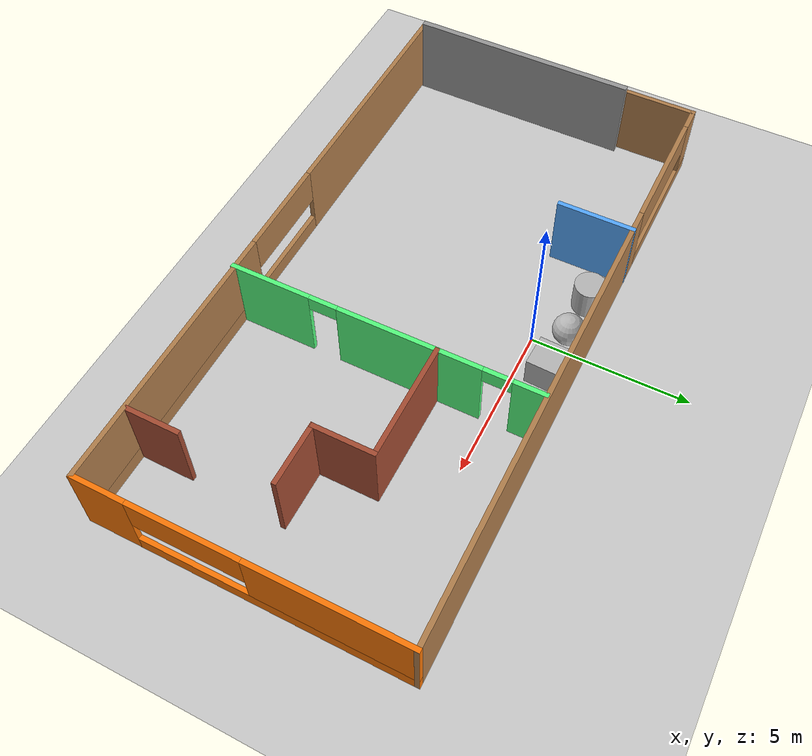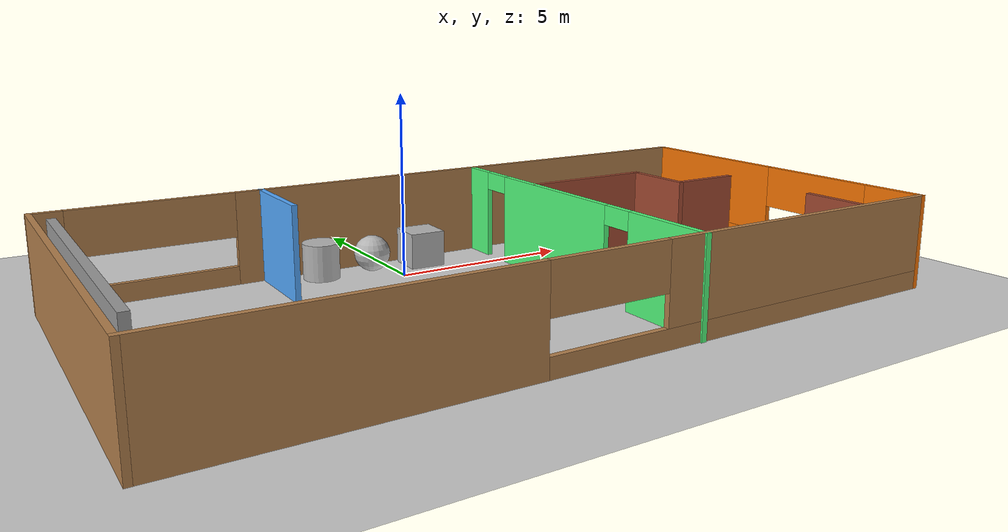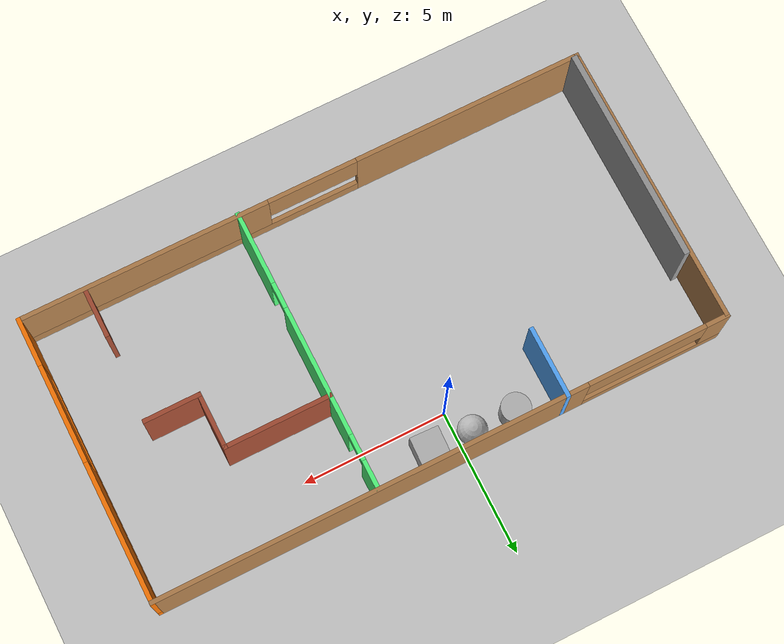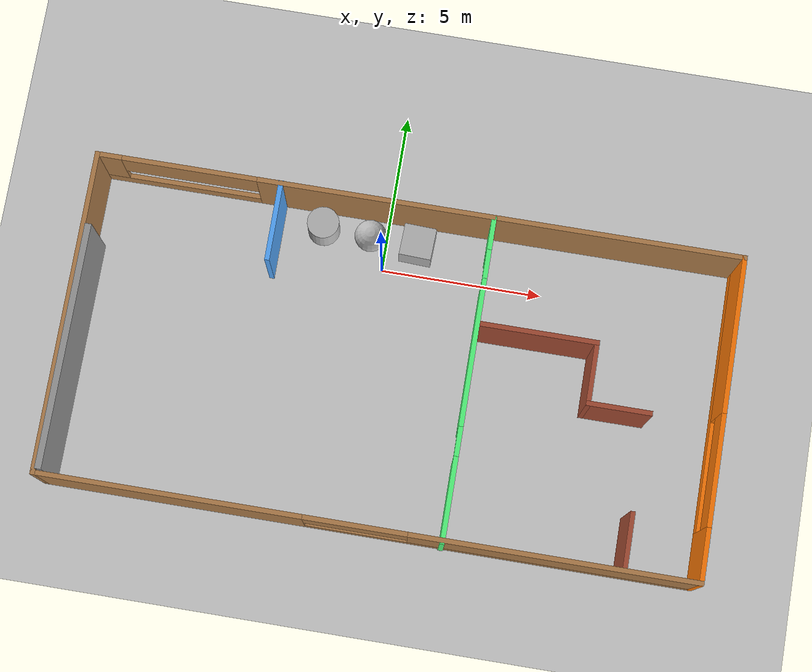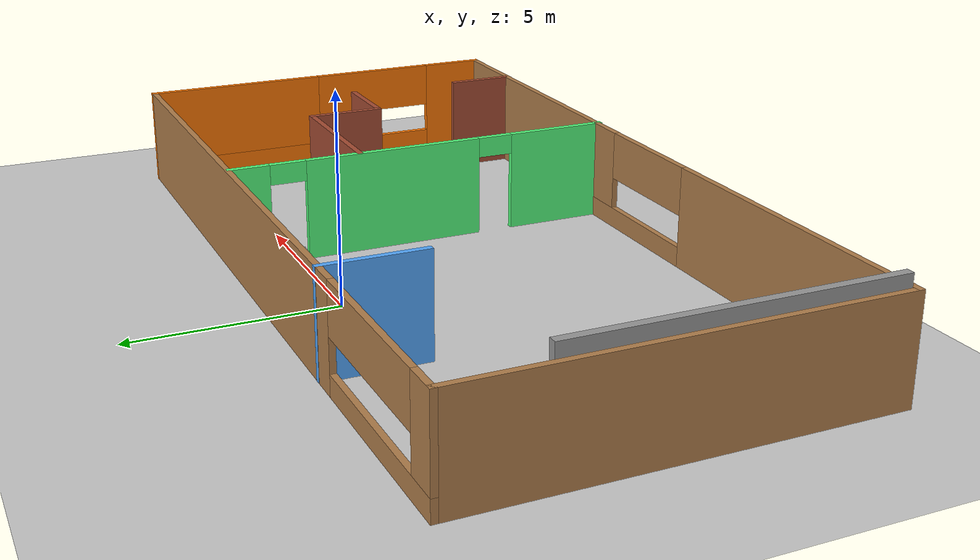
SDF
<sdf version="1.6">
 <world name="default">
  <light name="sun" type="directional">
   <pose>0 0 10 0 -0 0</pose>
   <diffuse>0.8 0.8 0.8 1</diffuse>
   <specular>0.2 0.2 0.2 1</specular>
   <attenuation>
    <range>1000</range>
    <constant>0.9</constant>
    <linear>0.01</linear>
    <quadratic>0.001</quadratic>
   </attenuation>
   <direction>-0.5 0.1 -0.9</direction>
  </light>
  <model name="ground_plane">
   <static>1</static>
   <link name="link">
    <collision name="collision">
     <geometry><plane><normal>0 0 1</normal><size>100 100</size></plane></geometry>
     <surface><friction><ode><mu>100</mu><mu2>50</mu2></ode></friction></surface>
    </collision>
    <visual name="visual">
     <cast_shadows>0</cast_shadows>
     <geometry><plane><normal>0 0 1</normal><size>100 100</size></plane></geometry>
     <material>
      <script><uri>file://media/materials/scripts/gazebo.material</uri><name>Gazebo/Grey</name></script>
     </material>
    </visual>
   </link>
  </model>
  <gravity>0 0 -9.8</gravity>
  <magnetic_field>6e-06 2.3e-05 -4.2e-05</magnetic_field>
  <atmosphere type="adiabatic"/>
  <physics name="default_physics" default="0" type="ode">
   <max_step_size>0.001</max_step_size>
   <real_time_factor>1</real_time_factor>
   <real_time_update_rate>1000</real_time_update_rate>
  </physics>
  <scene><ambient>0.4 0.4 0.4 1</ambient><background>0.7 0.7 0.7 1</background><shadows>1</shadows></scene>
  <spherical_coordinates>
   <surface_model>EARTH_WGS84</surface_model>
   <latitude_deg>0</latitude_deg>
   <longitude_deg>0</longitude_deg>
   <elevation>0</elevation>
   <heading_deg>0</heading_deg>
  </spherical_coordinates>
  <model name="myworld4.world">
   <pose>0.885 -3.31326 0 0 -0 0</pose>
   <link name="Wall_0">
    <pose>0 -4.90674 0 0 -0 0</pose>
    <visual name="Wall_0_Visual_0">
     <pose>-5.93931 0 1.25 0 -0 0</pose>
     <geometry><box><size>8.12138 0.15 2.5</size></box></geometry>
     <material>
      <script><uri>file://media/materials/scripts/gazebo.material</uri><name>Gazebo/Wood</name></script>
      <ambient>0.996078 0.47451 0.0196078 1</ambient>
     </material>
     <meta><layer>0</layer></meta>
    </visual>
    <collision name="Wall_0_Collision_0">
     <geometry><box><size>8.12138 0.15 2.5</size></box></geometry>
     <pose>-5.93931 0 1.25 0 -0 0</pose>
    </collision>
    <visual name="Wall_0_Visual_1">
     <pose>4.06069 0 0.25 0 -0 0</pose>
     <geometry><box><size>11.8786 0.15 0.5</size></box></geometry>
     <material>
      <script><uri>file://media/materials/scripts/gazebo.material</uri><name>Gazebo/Wood</name></script>
      <ambient>0.996078 0.47451 0.0196078 1</ambient>
     </material>
     <meta><layer>0</layer></meta>
    </visual>
    <collision name="Wall_0_Collision_1">
     <geometry><box><size>11.8786 0.15 0.5</size></box></geometry>
     <pose>4.06069 0 0.25 0 -0 0</pose>
    </collision>
    <visual name="Wall_0_Visual_2">
     <pose>5.63039 0 1.5 0 -0 0</pose>
     <geometry><box><size>8.73922 0.15 2</size></box></geometry>
     <material>
      <script><uri>file://media/materials/scripts/gazebo.material</uri><name>Gazebo/Wood</name></script>
      <ambient>0.996078 0.47451 0.0196078 1</ambient>
     </material>
     <meta><layer>0</layer></meta>
    </visual>
    <collision name="Wall_0_Collision_2">
     <geometry><box><size>8.73922 0.15 2</size></box></geometry>
     <pose>5.63039 0 1.5 0 -0 0</pose>
    </collision>
    <visual name="Wall_0_Visual_3">
     <pose>-0.308919 0 1.9 0 -0 0</pose>
     <geometry><box><size>3.13941 0.15 1.2</size></box></geometry>
     <material>
      <script><uri>file://media/materials/scripts/gazebo.material</uri><name>Gazebo/Wood</name></script>
      <ambient>0.996078 0.47451 0.0196078 1</ambient>
     </material>
     <meta><layer>0</layer></meta>
    </visual>
    <collision name="Wall_0_Collision_3">
     <geometry><box><size>3.13941 0.15 1.2</size></box></geometry>
     <pose>-0.308919 0 1.9 0 -0 0</pose>
    </collision>
   </link>
   <link name="Wall_1">
    <pose>9.925 0.018259 0 0 -0 1.5708</pose>
    <visual name="Wall_1_Visual_0">
     <pose>-4.138 0 1.25 0 -0 0</pose>
     <geometry><box><size>1.72401 0.15 2.5</size></box></geometry>
     <material>
      <script><uri>file://media/materials/scripts/gazebo.material</uri><name>Gazebo/Grey</name></script>
      <ambient>0.996078 0.47451 0.0196078 1</ambient>
     </material>
     <meta><layer>0</layer></meta>
    </visual>
    <collision name="Wall_1_Collision_0">
     <geometry><box><size>1.72401 0.15 2.5</size></box></geometry>
     <pose>-4.138 0 1.25 0 -0 0</pose>
    </collision>
    <visual name="Wall_1_Visual_1">
     <pose>0.862005 0 0.25 0 -0 0</pose>
     <geometry><box><size>8.27599 0.15 0.5</size></box></geometry>
     <material>
      <script><uri>file://media/materials/scripts/gazebo.material</uri><name>Gazebo/Grey</name></script>
      <ambient>0.996078 0.47451 0.0196078 1</ambient>
     </material>
     <meta><layer>0</layer></meta>
    </visual>
    <collision name="Wall_1_Collision_1">
     <geometry><box><size>8.27599 0.15 0.5</size></box></geometry>
     <pose>0.862005 0 0.25 0 -0 0</pose>
    </collision>
    <visual name="Wall_1_Visual_2">
     <pose>2.56888 0 1.5 0 -0 0</pose>
     <geometry><box><size>4.86223 0.15 2</size></box></geometry>
     <material>
      <script><uri>file://media/materials/scripts/gazebo.material</uri><name>Gazebo/Grey</name></script>
      <ambient>0.996078 0.47451 0.0196078 1</ambient>
     </material>
     <meta><layer>0</layer></meta>
    </visual>
    <collision name="Wall_1_Collision_2">
     <geometry><box><size>4.86223 0.15 2</size></box></geometry>
     <pose>2.56888 0 1.5 0 -0 0</pose>
    </collision>
    <visual name="Wall_1_Visual_3">
     <pose>-1.56911 0 1.9 0 -0 0</pose>
     <geometry><box><size>3.41376 0.15 1.2</size></box></geometry>
     <material>
      <script><uri>file://media/materials/scripts/gazebo.material</uri><name>Gazebo/Grey</name></script>
      <ambient>0.996078 0.47451 0.0196078 1</ambient>
     </material>
     <meta><layer>0</layer></meta>
    </visual>
    <collision name="Wall_1_Collision_3">
     <geometry><box><size>3.41376 0.15 1.2</size></box></geometry>
     <pose>-1.56911 0 1.9 0 -0 0</pose>
    </collision>
   </link>
   <link name="Wall_10">
    <collision name="Wall_10_Collision">
     <geometry><box><size>3.75 0.15 2.5</size></box></geometry>
     <pose>0 0 1.25 0 -0 0</pose>
    </collision>
    <visual name="Wall_10_Visual">
     <pose>0 0 1.25 0 -0 0</pose>
     <geometry><box><size>3.75 0.15 2.5</size></box></geometry>
     <material>
      <script><uri>file://media/materials/scripts/gazebo.material</uri><name>Gazebo/Bricks</name></script>
      <ambient>1 1 1 1</ambient>
     </material>
     <meta><layer>0</layer></meta>
    </visual>
    <pose>4.11351 1.64752 0 0 -0 0</pose>
   </link>
   <link name="Wall_12">
    <collision name="Wall_12_Collision">
     <geometry><box><size>1.75 0.15 2.5</size></box></geometry>
     <pose>0 0 1.25 0 -0 0</pose>
    </collision>
    <visual name="Wall_12_Visual">
     <pose>0 0 1.25 0 -0 0</pose>
     <geometry><box><size>1.75 0.15 2.5</size></box></geometry>
     <material>
      <script><uri>file://media/materials/scripts/gazebo.material</uri><name>Gazebo/Bricks</name></script>
      <ambient>1 1 1 1</ambient>
     </material>
     <meta><layer>0</layer></meta>
    </visual>
    <pose>7.66699 -4.03449 0 0 0 -1.5708</pose>
   </link>
   <link name="Wall_14">
    <collision name="Wall_14_Collision">
     <geometry><box><size>2 0.15 2.5</size></box></geometry>
     <pose>0 0 1.25 0 -0 0</pose>
    </collision>
    <visual name="Wall_14_Visual">
     <pose>0 0 1.25 0 -0 0</pose>
     <geometry><box><size>2 0.15 2.5</size></box></geometry>
     <material>
      <script><uri>file://media/materials/scripts/gazebo.material</uri><name>Gazebo/Bricks</name></script>
      <ambient>1 1 1 1</ambient>
     </material>
     <meta><layer>0</layer></meta>
    </visual>
    <pose>5.91351 0.722515 0 0 0 -1.5708</pose>
   </link>
   <link name="Wall_17">
    <collision name="Wall_17_Collision">
     <geometry><box><size>2 0.15 2.5</size></box></geometry>
     <pose>0 0 1.25 0 -0 0</pose>
    </collision>
    <visual name="Wall_17_Visual">
     <pose>0 0 1.25 0 -0 0</pose>
     <geometry><box><size>2 0.15 2.5</size></box></geometry>
     <material>
      <script><uri>file://media/materials/scripts/gazebo.material</uri><name>Gazebo/Bricks</name></script>
      <ambient>1 1 1 1</ambient>
     </material>
     <meta><layer>0</layer></meta>
    </visual>
    <pose>6.83851 -0.202485 0 0 -0 0</pose>
   </link>
   <link name="Wall_2">
    <pose>0 4.94326 0 0 -0 3.14159</pose>
    <visual name="Wall_2_Visual_0">
     <pose>-2.50292 0 1.25 0 -0 0</pose>
     <geometry><box><size>14.9942 0.15 2.5</size></box></geometry>
     <material>
      <script><uri>file://media/materials/scripts/gazebo.material</uri><name>Gazebo/Wood</name></script>
      <ambient>0.996078 0.47451 0.0196078 1</ambient>
     </material>
     <meta><layer>0</layer></meta>
    </visual>
    <collision name="Wall_2_Collision_0">
     <geometry><box><size>14.9942 0.15 2.5</size></box></geometry>
     <pose>-2.50292 0 1.25 0 -0 0</pose>
    </collision>
    <visual name="Wall_2_Visual_1">
     <pose>7.49708 0 0.25 0 -0 0</pose>
     <geometry><box><size>5.00584 0.15 0.5</size></box></geometry>
     <material>
      <script><uri>file://media/materials/scripts/gazebo.material</uri><name>Gazebo/Wood</name></script>
      <ambient>0.996078 0.47451 0.0196078 1</ambient>
     </material>
     <meta><layer>0</layer></meta>
    </visual>
    <collision name="Wall_2_Collision_1">
     <geometry><box><size>5.00584 0.15 0.5</size></box></geometry>
     <pose>7.49708 0 0.25 0 -0 0</pose>
    </collision>
    <visual name="Wall_2_Visual_2">
     <pose>9.58471 0 1.5 0 -0 0</pose>
     <geometry><box><size>0.830588 0.15 2</size></box></geometry>
     <material>
      <script><uri>file://media/materials/scripts/gazebo.material</uri><name>Gazebo/Wood</name></script>
      <ambient>0.996078 0.47451 0.0196078 1</ambient>
     </material>
     <meta><layer>0</layer></meta>
    </visual>
    <collision name="Wall_2_Collision_2">
     <geometry><box><size>0.830588 0.15 2</size></box></geometry>
     <pose>9.58471 0 1.5 0 -0 0</pose>
    </collision>
    <visual name="Wall_2_Visual_3">
     <pose>7.08179 0 1.9 0 -0 0</pose>
     <geometry><box><size>4.17525 0.15 1.2</size></box></geometry>
     <material>
      <script><uri>file://media/materials/scripts/gazebo.material</uri><name>Gazebo/Wood</name></script>
      <ambient>0.996078 0.47451 0.0196078 1</ambient>
     </material>
     <meta><layer>0</layer></meta>
    </visual>
    <collision name="Wall_2_Collision_3">
     <geometry><box><size>4.17525 0.15 1.2</size></box></geometry>
     <pose>7.08179 0 1.9 0 -0 0</pose>
    </collision>
   </link>
   <link name="Wall_3">
    <collision name="Wall_3_Collision">
     <geometry><box><size>10 0.15 2.5</size></box></geometry>
     <pose>0 0 1.25 0 -0 0</pose>
    </collision>
    <visual name="Wall_3_Visual">
     <pose>0 0 1.25 0 -0 0</pose>
     <geometry><box><size>10 0.15 2.5</size></box></geometry>
     <material>
      <script><uri>file://media/materials/scripts/gazebo.material</uri><name>Gazebo/Wood</name></script>
      <ambient>0.996078 0.47451 0.0196078 1</ambient>
     </material>
     <meta><layer>0</layer></meta>
    </visual>
    <pose>-9.925 0.018259 0 0 0 -1.5708</pose>
   </link>
   <link name="Wall_5">
    <pose>2.2983 -0.022813 0 0 0 -1.5708</pose>
    <visual name="Wall_5_Visual_0">
     <pose>-4.48029 0 1.25 0 -0 0</pose>
     <geometry><box><size>1.03941 0.15 2.5</size></box></geometry>
     <material>
      <script><uri>file://media/materials/scripts/gazebo.material</uri><name>Gazebo/Grey</name></script>
      <ambient>0.333333 1 0.498039 1</ambient>
     </material>
     <meta><layer>0</layer></meta>
    </visual>
    <collision name="Wall_5_Collision_0">
     <geometry><box><size>1.03941 0.15 2.5</size></box></geometry>
     <pose>-4.48029 0 1.25 0 -0 0</pose>
    </collision>
    <visual name="Wall_5_Visual_1">
     <pose>-0.78822 0 1.25 0 -0 0</pose>
     <geometry><box><size>4.54473 0.15 2.5</size></box></geometry>
     <material>
      <script><uri>file://media/materials/scripts/gazebo.material</uri><name>Gazebo/Grey</name></script>
      <ambient>0.333333 1 0.498039 1</ambient>
     </material>
     <meta><layer>0</layer></meta>
    </visual>
    <collision name="Wall_5_Collision_1">
     <geometry><box><size>4.54473 0.15 2.5</size></box></geometry>
     <pose>-0.78822 0 1.25 0 -0 0</pose>
    </collision>
    <visual name="Wall_5_Visual_2">
     <pose>3.69207 0 1.25 0 -0 0</pose>
     <geometry><box><size>2.61585 0.15 2.5</size></box></geometry>
     <material>
      <script><uri>file://media/materials/scripts/gazebo.material</uri><name>Gazebo/Grey</name></script>
      <ambient>0.333333 1 0.498039 1</ambient>
     </material>
     <meta><layer>0</layer></meta>
    </visual>
    <collision name="Wall_5_Collision_2">
     <geometry><box><size>2.61585 0.15 2.5</size></box></geometry>
     <pose>3.69207 0 1.25 0 -0 0</pose>
    </collision>
    <visual name="Wall_5_Visual_3">
     <pose>-3.51059 0 2.25 0 -0 0</pose>
     <geometry><box><size>0.9 0.15 0.5</size></box></geometry>
     <material>
      <script><uri>file://media/materials/scripts/gazebo.material</uri><name>Gazebo/Grey</name></script>
      <ambient>0.333333 1 0.498039 1</ambient>
     </material>
     <meta><layer>0</layer></meta>
    </visual>
    <collision name="Wall_5_Collision_3">
     <geometry><box><size>0.9 0.15 0.5</size></box></geometry>
     <pose>-3.51059 0 2.25 0 -0 0</pose>
    </collision>
    <visual name="Wall_5_Visual_4">
     <pose>1.93415 0 2.25 0 -0 0</pose>
     <geometry><box><size>0.9 0.15 0.5</size></box></geometry>
     <material>
      <script><uri>file://media/materials/scripts/gazebo.material</uri><name>Gazebo/Grey</name></script>
      <ambient>0.333333 1 0.498039 1</ambient>
     </material>
     <meta><layer>0</layer></meta>
    </visual>
    <collision name="Wall_5_Collision_4">
     <geometry><box><size>0.9 0.15 0.5</size></box></geometry>
     <pose>1.93415 0 2.25 0 -0 0</pose>
    </collision>
   </link>
   <link name="Wall_7">
    <collision name="Wall_7_Collision">
     <geometry><box><size>2.5 0.15 2.5</size></box></geometry>
     <pose>0 0 1.25 0 -0 0</pose>
    </collision>
    <visual name="Wall_7_Visual">
     <pose>0 0 1.25 0 -0 0</pose>
     <geometry><box><size>2.5 0.15 2.5</size></box></geometry>
     <material>
      <script><uri>file://media/materials/scripts/gazebo.material</uri><name>Gazebo/Grey</name></script>
      <ambient>0.333333 0.666667 1 1</ambient>
     </material>
     <meta><layer>0</layer></meta>
    </visual>
    <pose>-4.25667 3.77281 0 0 0 -1.5708</pose>
   </link>
   <static>1</static>
  </model>
  <model name="textured_shapes">
   <pose>-0.519572 0.943753 0.5 0 -0 1.53113</pose>
   <link name="box">
    <pose>0 -1.5 0 0 -0 0</pose>
    <collision name="collision"><geometry><box><size>1 1 1</size></box></geometry></collision>
    <visual name="visual">
     <geometry><box><size>1 1 1</size></box></geometry>
     <material>
      <script>
       <uri>model://textured_shapes/materials/scripts</uri>
       <uri>model://textured_shapes/materials/textures</uri>
       <name>TexturedShape/Squares</name>
      </script>
     </material>
    </visual>
    <inertial>
     <inertia><ixx>1</ixx><ixy>0</ixy><ixz>0</ixz><iyy>1</iyy><iyz>0</iyz><izz>1</izz></inertia>
     <mass>1</mass>
    </inertial>
   </link>
   <link name="sphere">
    <collision name="collision"><geometry><sphere><radius>0.5</radius></sphere></geometry></collision>
    <visual name="visual">
     <geometry><sphere><radius>0.5</radius></sphere></geometry>
     <material>
      <script>
       <uri>model://textured_shapes/materials/scripts</uri>
       <uri>model://textured_shapes/materials/textures</uri>
       <name>TexturedShape/Squares</name>
      </script>
     </material>
    </visual>
    <inertial>
     <inertia><ixx>1</ixx><ixy>0</ixy><ixz>0</ixz><iyy>1</iyy><iyz>0</iyz><izz>1</izz></inertia>
     <mass>1</mass>
    </inertial>
   </link>
   <link name="cylinder">
    <pose>0 1.5 0 0 -0 0</pose>
    <collision name="collision">
     <geometry><cylinder><radius>0.5</radius><length>1</length></cylinder></geometry>
    </collision>
    <visual name="visual">
     <geometry><cylinder><radius>0.5</radius><length>1</length></cylinder></geometry>
     <material>
      <script>
       <uri>model://textured_shapes/materials/scripts</uri>
       <uri>model://textured_shapes/materials/textures</uri>
       <name>TexturedShape/Squares</name>
      </script>
     </material>
    </visual>
    <inertial>
     <inertia><ixx>1</ixx><ixy>0</ixy><ixz>0</ixz><iyy>1</iyy><iyz>0</iyz><izz>1</izz></inertia>
     <mass>1</mass>
    </inertial>
   </link>
  </model>
  <model name="grey_wall">
   <static>1</static>
   <link name="link">
    <pose>0 0 1.4 0 -0 0</pose>
    <collision name="collision"><geometry><box><size>7.5 0.2 2.8</size></box></geometry></collision>
    <visual name="visual">
     <cast_shadows>0</cast_shadows>
     <geometry><box><size>7.5 0.2 2.8</size></box></geometry>
     <material>
      <script>
       <uri>model://grey_wall/materials/scripts</uri>
       <uri>model://grey_wall/materials/textures</uri>
       <name>vrc/grey_wall</name>
      </script>
     </material>
    </visual>
   </link>
   <pose>-8.8359 -4.38119 0 0 -0 1.56751</pose>
  </model>
 </world>
</sdf>
